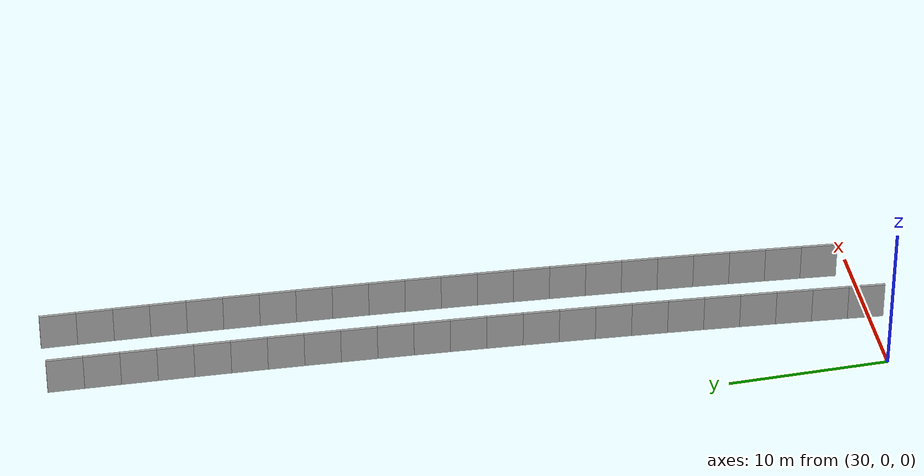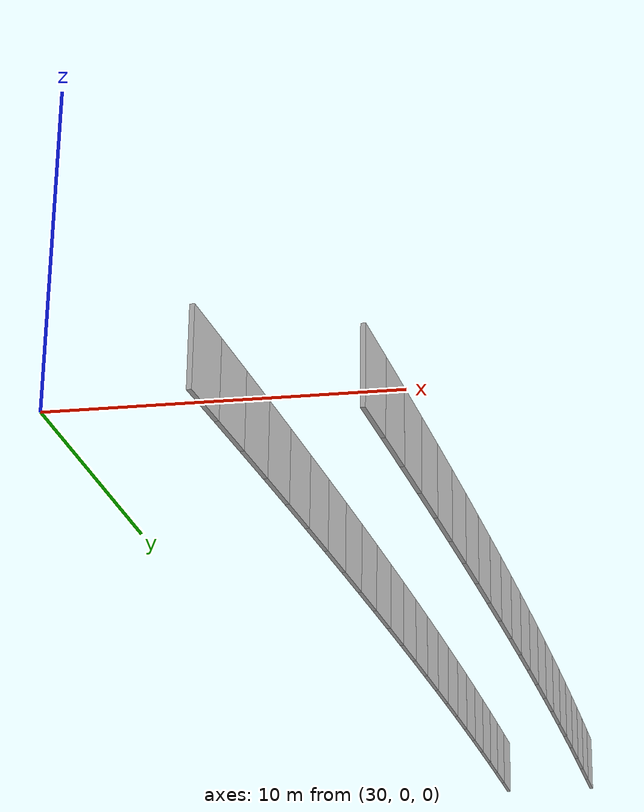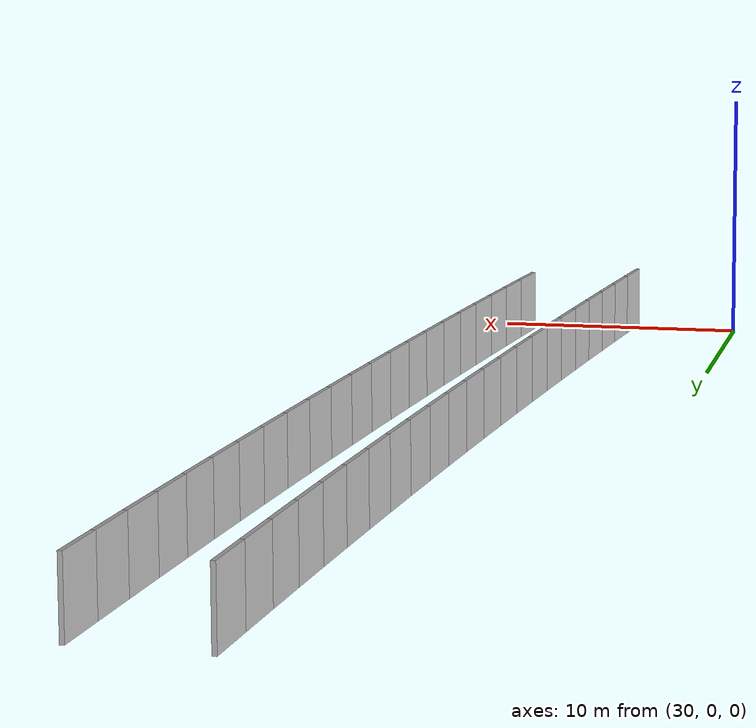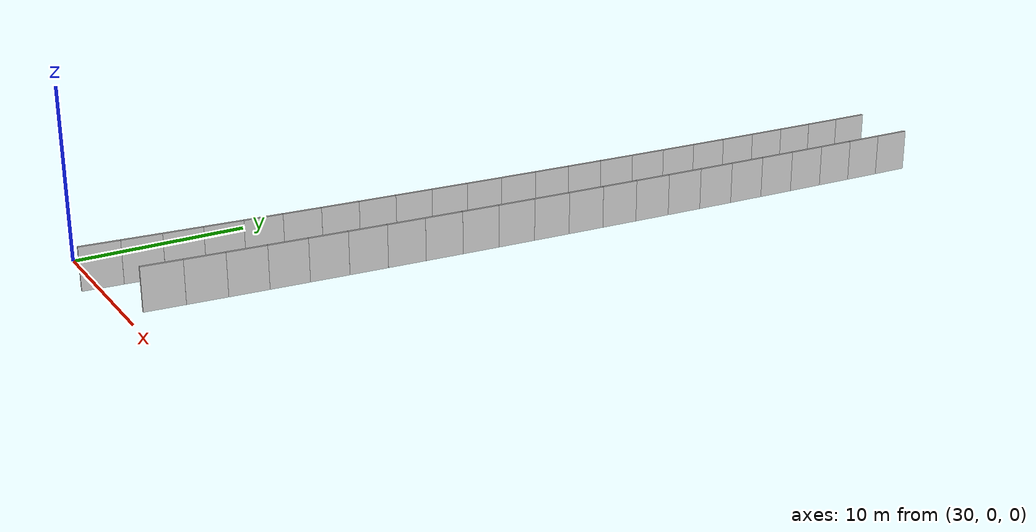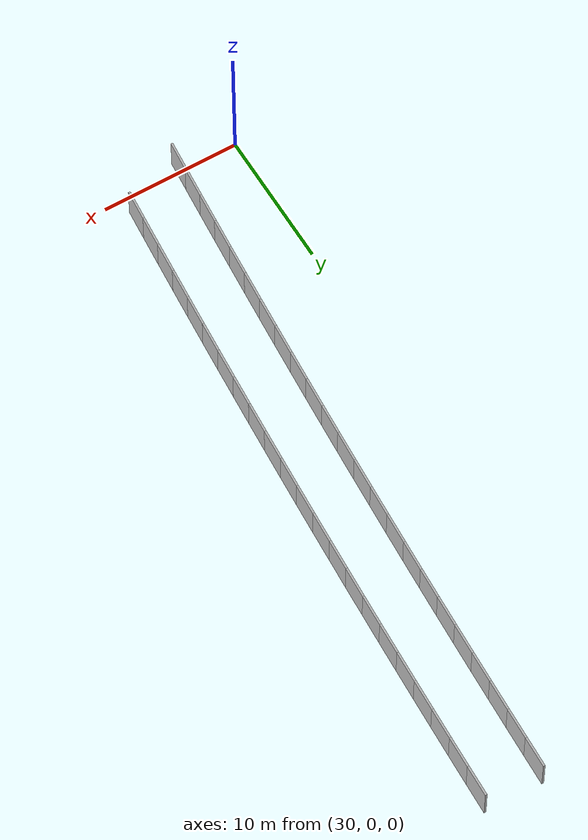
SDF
<?xml version="1.0" ?>
<sdf version="1.6">
  <model name="sps_4623">
    <pose frame="">0 0 0 0 -0 0</pose>
    <static>1</static>
    <self_collide>0</self_collide>
    <allow_auto_disable>0</allow_auto_disable>
    <link name="Wall4510">
      <kinematic>0</kinematic>
      <gravity>1</gravity>
      <self_collide>0</self_collide>
      <collision name="collision">
        <geometry>
          <box>
            <size>2.25455 0.15 2.5</size>
          </box>
        </geometry>
        <pose frame="">0 0 0 0 -0 0</pose>
      </collision>
      <visual name="visual">
        <geometry>
          <box>
            <size>2.25455 0.15 2.5</size>
          </box>
        </geometry>
        <pose frame="">0 0 0 0 -0 0</pose>
        <cast_shadows>1</cast_shadows>
        <transparency>0.0</transparency>
      </visual>
      <pose frame="">38.7667 2.11119 1.25 0 -0 1.48259</pose>
    </link>
    <link name="Wall4511">
      <kinematic>0</kinematic>
      <gravity>1</gravity>
      <self_collide>0</self_collide>
      <collision name="collision">
        <geometry>
          <box>
            <size>2.25467 0.15 2.5</size>
          </box>
        </geometry>
        <pose frame="">0 0 0 0 -0 0</pose>
      </collision>
      <visual name="visual">
        <geometry>
          <box>
            <size>2.25467 0.15 2.5</size>
          </box>
        </geometry>
        <pose frame="">0 0 0 0 -0 0</pose>
        <cast_shadows>1</cast_shadows>
        <transparency>0.0</transparency>
      </visual>
      <pose frame="">38.9625 4.35728 1.25 0 -0 1.48509</pose>
    </link>
    <link name="Wall4512">
      <kinematic>0</kinematic>
      <gravity>1</gravity>
      <self_collide>0</self_collide>
      <collision name="collision">
        <geometry>
          <box>
            <size>2.25466 0.15 2.5</size>
          </box>
        </geometry>
        <pose frame="">0 0 0 0 -0 0</pose>
      </collision>
      <visual name="visual">
        <geometry>
          <box>
            <size>2.25466 0.15 2.5</size>
          </box>
        </geometry>
        <pose frame="">0 0 0 0 -0 0</pose>
        <cast_shadows>1</cast_shadows>
        <transparency>0.0</transparency>
      </visual>
      <pose frame="">39.1529 6.6039 1.25 0 -0 1.4874</pose>
    </link>
    <link name="Wall4513">
      <kinematic>0</kinematic>
      <gravity>1</gravity>
      <self_collide>0</self_collide>
      <collision name="collision">
        <geometry>
          <box>
            <size>2.2546 0.15 2.5</size>
          </box>
        </geometry>
        <pose frame="">0 0 0 0 -0 0</pose>
      </collision>
      <visual name="visual">
        <geometry>
          <box>
            <size>2.2546 0.15 2.5</size>
          </box>
        </geometry>
        <pose frame="">0 0 0 0 -0 0</pose>
        <cast_shadows>1</cast_shadows>
        <transparency>0.0</transparency>
      </visual>
      <pose frame="">39.3382 8.85091 1.25 0 -0 1.48971</pose>
    </link>
    <link name="Wall4514">
      <kinematic>0</kinematic>
      <gravity>1</gravity>
      <self_collide>0</self_collide>
      <collision name="collision">
        <geometry>
          <box>
            <size>2.25459 0.15 2.5</size>
          </box>
        </geometry>
        <pose frame="">0 0 0 0 -0 0</pose>
      </collision>
      <visual name="visual">
        <geometry>
          <box>
            <size>2.25459 0.15 2.5</size>
          </box>
        </geometry>
        <pose frame="">0 0 0 0 -0 0</pose>
        <cast_shadows>1</cast_shadows>
        <transparency>0.0</transparency>
      </visual>
      <pose frame="">39.5181 11.0983 1.25 0 -0 1.49213</pose>
    </link>
    <link name="Wall4515">
      <kinematic>0</kinematic>
      <gravity>1</gravity>
      <self_collide>0</self_collide>
      <collision name="collision">
        <geometry>
          <box>
            <size>2.25471 0.15 2.5</size>
          </box>
        </geometry>
        <pose frame="">0 0 0 0 -0 0</pose>
      </collision>
      <visual name="visual">
        <geometry>
          <box>
            <size>2.25471 0.15 2.5</size>
          </box>
        </geometry>
        <pose frame="">0 0 0 0 -0 0</pose>
        <cast_shadows>1</cast_shadows>
        <transparency>0.0</transparency>
      </visual>
      <pose frame="">39.6925 13.3462 1.25 0 -0 1.4946</pose>
    </link>
    <link name="Wall4516">
      <kinematic>0</kinematic>
      <gravity>1</gravity>
      <self_collide>0</self_collide>
      <collision name="collision">
        <geometry>
          <box>
            <size>2.25457 0.15 2.5</size>
          </box>
        </geometry>
        <pose frame="">0 0 0 0 -0 0</pose>
      </collision>
      <visual name="visual">
        <geometry>
          <box>
            <size>2.25457 0.15 2.5</size>
          </box>
        </geometry>
        <pose frame="">0 0 0 0 -0 0</pose>
        <cast_shadows>1</cast_shadows>
        <transparency>0.0</transparency>
      </visual>
      <pose frame="">39.8616 15.5945 1.25 0 -0 1.49685</pose>
    </link>
    <link name="Wall4517">
      <kinematic>0</kinematic>
      <gravity>1</gravity>
      <self_collide>0</self_collide>
      <collision name="collision">
        <geometry>
          <box>
            <size>2.25473 0.15 2.5</size>
          </box>
        </geometry>
        <pose frame="">0 0 0 0 -0 0</pose>
      </collision>
      <visual name="visual">
        <geometry>
          <box>
            <size>2.25473 0.15 2.5</size>
          </box>
        </geometry>
        <pose frame="">0 0 0 0 -0 0</pose>
        <cast_shadows>1</cast_shadows>
        <transparency>0.0</transparency>
      </visual>
      <pose frame="">40.0254 17.8432 1.25 0 -0 1.49924</pose>
    </link>
    <link name="Wall4518">
      <kinematic>0</kinematic>
      <gravity>1</gravity>
      <self_collide>0</self_collide>
      <collision name="collision">
        <geometry>
          <box>
            <size>2.25442 0.15 2.5</size>
          </box>
        </geometry>
        <pose frame="">0 0 0 0 -0 0</pose>
      </collision>
      <visual name="visual">
        <geometry>
          <box>
            <size>2.25442 0.15 2.5</size>
          </box>
        </geometry>
        <pose frame="">0 0 0 0 -0 0</pose>
        <cast_shadows>1</cast_shadows>
        <transparency>0.0</transparency>
      </visual>
      <pose frame="">40.184 20.0922 1.25 0 -0 1.50162</pose>
    </link>
    <link name="Wall4519">
      <kinematic>0</kinematic>
      <gravity>1</gravity>
      <self_collide>0</self_collide>
      <collision name="collision">
        <geometry>
          <box>
            <size>2.25466 0.15 2.5</size>
          </box>
        </geometry>
        <pose frame="">0 0 0 0 -0 0</pose>
      </collision>
      <visual name="visual">
        <geometry>
          <box>
            <size>2.25466 0.15 2.5</size>
          </box>
        </geometry>
        <pose frame="">0 0 0 0 -0 0</pose>
        <cast_shadows>1</cast_shadows>
        <transparency>0.0</transparency>
      </visual>
      <pose frame="">40.3371 22.3415 1.25 0 -0 1.50404</pose>
    </link>
    <link name="Wall4520">
      <kinematic>0</kinematic>
      <gravity>1</gravity>
      <self_collide>0</self_collide>
      <collision name="collision">
        <geometry>
          <box>
            <size>2.25465 0.15 2.5</size>
          </box>
        </geometry>
        <pose frame="">0 0 0 0 -0 0</pose>
      </collision>
      <visual name="visual">
        <geometry>
          <box>
            <size>2.25465 0.15 2.5</size>
          </box>
        </geometry>
        <pose frame="">0 0 0 0 -0 0</pose>
        <cast_shadows>1</cast_shadows>
        <transparency>0.0</transparency>
      </visual>
      <pose frame="">40.4846 24.5913 1.25 0 -0 1.50654</pose>
    </link>
    <link name="Wall4521">
      <kinematic>0</kinematic>
      <gravity>1</gravity>
      <self_collide>0</self_collide>
      <collision name="collision">
        <geometry>
          <box>
            <size>2.25471 0.15 2.5</size>
          </box>
        </geometry>
        <pose frame="">0 0 0 0 -0 0</pose>
      </collision>
      <visual name="visual">
        <geometry>
          <box>
            <size>2.25471 0.15 2.5</size>
          </box>
        </geometry>
        <pose frame="">0 0 0 0 -0 0</pose>
        <cast_shadows>1</cast_shadows>
        <transparency>0.0</transparency>
      </visual>
      <pose frame="">40.6269 26.8415 1.25 0 -0 1.50874</pose>
    </link>
    <link name="Wall4522">
      <kinematic>0</kinematic>
      <gravity>1</gravity>
      <self_collide>0</self_collide>
      <collision name="collision">
        <geometry>
          <box>
            <size>2.25463 0.15 2.5</size>
          </box>
        </geometry>
        <pose frame="">0 0 0 0 -0 0</pose>
      </collision>
      <visual name="visual">
        <geometry>
          <box>
            <size>2.25463 0.15 2.5</size>
          </box>
        </geometry>
        <pose frame="">0 0 0 0 -0 0</pose>
        <cast_shadows>1</cast_shadows>
        <transparency>0.0</transparency>
      </visual>
      <pose frame="">40.7642 29.092 1.25 0 -0 1.51107</pose>
    </link>
    <link name="Wall4523">
      <kinematic>0</kinematic>
      <gravity>1</gravity>
      <self_collide>0</self_collide>
      <collision name="collision">
        <geometry>
          <box>
            <size>2.25447 0.15 2.5</size>
          </box>
        </geometry>
        <pose frame="">0 0 0 0 -0 0</pose>
      </collision>
      <visual name="visual">
        <geometry>
          <box>
            <size>2.25447 0.15 2.5</size>
          </box>
        </geometry>
        <pose frame="">0 0 0 0 -0 0</pose>
        <cast_shadows>1</cast_shadows>
        <transparency>0.0</transparency>
      </visual>
      <pose frame="">40.8958 31.3427 1.25 0 -0 1.51364</pose>
    </link>
    <link name="Wall4524">
      <kinematic>0</kinematic>
      <gravity>1</gravity>
      <self_collide>0</self_collide>
      <collision name="collision">
        <geometry>
          <box>
            <size>2.25462 0.15 2.5</size>
          </box>
        </geometry>
        <pose frame="">0 0 0 0 -0 0</pose>
      </collision>
      <visual name="visual">
        <geometry>
          <box>
            <size>2.25462 0.15 2.5</size>
          </box>
        </geometry>
        <pose frame="">0 0 0 0 -0 0</pose>
        <cast_shadows>1</cast_shadows>
        <transparency>0.0</transparency>
      </visual>
      <pose frame="">41.0221 33.5937 1.25 0 -0 1.51584</pose>
    </link>
    <link name="Wall4525">
      <kinematic>0</kinematic>
      <gravity>1</gravity>
      <self_collide>0</self_collide>
      <collision name="collision">
        <geometry>
          <box>
            <size>2.25452 0.15 2.5</size>
          </box>
        </geometry>
        <pose frame="">0 0 0 0 -0 0</pose>
      </collision>
      <visual name="visual">
        <geometry>
          <box>
            <size>2.25452 0.15 2.5</size>
          </box>
        </geometry>
        <pose frame="">0 0 0 0 -0 0</pose>
        <cast_shadows>1</cast_shadows>
        <transparency>0.0</transparency>
      </visual>
      <pose frame="">41.1433 35.845 1.25 0 -0 1.51825</pose>
    </link>
    <link name="Wall4526">
      <kinematic>0</kinematic>
      <gravity>1</gravity>
      <self_collide>0</self_collide>
      <collision name="collision">
        <geometry>
          <box>
            <size>2.25459 0.15 2.5</size>
          </box>
        </geometry>
        <pose frame="">0 0 0 0 -0 0</pose>
      </collision>
      <visual name="visual">
        <geometry>
          <box>
            <size>2.25459 0.15 2.5</size>
          </box>
        </geometry>
        <pose frame="">0 0 0 0 -0 0</pose>
        <cast_shadows>1</cast_shadows>
        <transparency>0.0</transparency>
      </visual>
      <pose frame="">41.2589 38.0966 1.25 0 -0 1.52075</pose>
    </link>
    <link name="Wall4527">
      <kinematic>0</kinematic>
      <gravity>1</gravity>
      <self_collide>0</self_collide>
      <collision name="collision">
        <geometry>
          <box>
            <size>2.25477 0.15 2.5</size>
          </box>
        </geometry>
        <pose frame="">0 0 0 0 -0 0</pose>
      </collision>
      <visual name="visual">
        <geometry>
          <box>
            <size>2.25477 0.15 2.5</size>
          </box>
        </geometry>
        <pose frame="">0 0 0 0 -0 0</pose>
        <cast_shadows>1</cast_shadows>
        <transparency>0.0</transparency>
      </visual>
      <pose frame="">41.3691 40.3486 1.25 0 -0 1.52305</pose>
    </link>
    <link name="Wall4528">
      <kinematic>0</kinematic>
      <gravity>1</gravity>
      <self_collide>0</self_collide>
      <collision name="collision">
        <geometry>
          <box>
            <size>2.2547 0.15 2.5</size>
          </box>
        </geometry>
        <pose frame="">0 0 0 0 -0 0</pose>
      </collision>
      <visual name="visual">
        <geometry>
          <box>
            <size>2.2547 0.15 2.5</size>
          </box>
        </geometry>
        <pose frame="">0 0 0 0 -0 0</pose>
        <cast_shadows>1</cast_shadows>
        <transparency>0.0</transparency>
      </visual>
      <pose frame="">41.4741 42.6009 1.25 0 -0 1.52538</pose>
    </link>
    <link name="Wall4529">
      <kinematic>0</kinematic>
      <gravity>1</gravity>
      <self_collide>0</self_collide>
      <collision name="collision">
        <geometry>
          <box>
            <size>2.25453 0.15 2.5</size>
          </box>
        </geometry>
        <pose frame="">0 0 0 0 -0 0</pose>
      </collision>
      <visual name="visual">
        <geometry>
          <box>
            <size>2.25453 0.15 2.5</size>
          </box>
        </geometry>
        <pose frame="">0 0 0 0 -0 0</pose>
        <cast_shadows>1</cast_shadows>
        <transparency>0.0</transparency>
      </visual>
      <pose frame="">41.5738 44.8533 1.25 0 -0 1.52774</pose>
    </link>
    <link name="Wall4530">
      <kinematic>0</kinematic>
      <gravity>1</gravity>
      <self_collide>0</self_collide>
      <collision name="collision">
        <geometry>
          <box>
            <size>2.25466 0.15 2.5</size>
          </box>
        </geometry>
        <pose frame="">0 0 0 0 -0 0</pose>
      </collision>
      <visual name="visual">
        <geometry>
          <box>
            <size>2.25466 0.15 2.5</size>
          </box>
        </geometry>
        <pose frame="">0 0 0 0 -0 0</pose>
        <cast_shadows>1</cast_shadows>
        <transparency>0.0</transparency>
      </visual>
      <pose frame="">41.668 47.1059 1.25 0 -0 1.53026</pose>
    </link>
    <link name="Wall4531">
      <kinematic>0</kinematic>
      <gravity>1</gravity>
      <self_collide>0</self_collide>
      <collision name="collision">
        <geometry>
          <box>
            <size>2.25446 0.15 2.5</size>
          </box>
        </geometry>
        <pose frame="">0 0 0 0 -0 0</pose>
      </collision>
      <visual name="visual">
        <geometry>
          <box>
            <size>2.25446 0.15 2.5</size>
          </box>
        </geometry>
        <pose frame="">0 0 0 0 -0 0</pose>
        <cast_shadows>1</cast_shadows>
        <transparency>0.0</transparency>
      </visual>
      <pose frame="">41.7569 49.3587 1.25 0 -0 1.53245</pose>
    </link>
    <link name="Wall6234">
      <kinematic>0</kinematic>
      <gravity>1</gravity>
      <self_collide>0</self_collide>
      <collision name="collision">
        <geometry>
          <box>
            <size>2.24479 0.15 2.5</size>
          </box>
        </geometry>
        <pose frame="">0 0 0 0 -0 0</pose>
      </collision>
      <visual name="visual">
        <geometry>
          <box>
            <size>2.24479 0.15 2.5</size>
          </box>
        </geometry>
        <pose frame="">0 0 0 0 -0 0</pose>
        <cast_shadows>1</cast_shadows>
        <transparency>0.0</transparency>
      </visual>
      <pose frame="">34.4431 0.239882 1.25 0 -0 1.48024</pose>
    </link>
    <link name="Wall6235">
      <kinematic>0</kinematic>
      <gravity>1</gravity>
      <self_collide>0</self_collide>
      <collision name="collision">
        <geometry>
          <box>
            <size>2.24474 0.15 2.5</size>
          </box>
        </geometry>
        <pose frame="">0 0 0 0 -0 0</pose>
      </collision>
      <visual name="visual">
        <geometry>
          <box>
            <size>2.24474 0.15 2.5</size>
          </box>
        </geometry>
        <pose frame="">0 0 0 0 -0 0</pose>
        <cast_shadows>1</cast_shadows>
        <transparency>0.0</transparency>
      </visual>
      <pose frame="">34.6435 2.47569 1.25 0 -0 1.48264</pose>
    </link>
    <link name="Wall6236">
      <kinematic>0</kinematic>
      <gravity>1</gravity>
      <self_collide>0</self_collide>
      <collision name="collision">
        <geometry>
          <box>
            <size>2.24463 0.15 2.5</size>
          </box>
        </geometry>
        <pose frame="">0 0 0 0 -0 0</pose>
      </collision>
      <visual name="visual">
        <geometry>
          <box>
            <size>2.24463 0.15 2.5</size>
          </box>
        </geometry>
        <pose frame="">0 0 0 0 -0 0</pose>
        <cast_shadows>1</cast_shadows>
        <transparency>0.0</transparency>
      </visual>
      <pose frame="">34.8384 4.7119 1.25 0 -0 1.48507</pose>
    </link>
    <link name="Wall6237">
      <kinematic>0</kinematic>
      <gravity>1</gravity>
      <self_collide>0</self_collide>
      <collision name="collision">
        <geometry>
          <box>
            <size>2.24482 0.15 2.5</size>
          </box>
        </geometry>
        <pose frame="">0 0 0 0 -0 0</pose>
      </collision>
      <visual name="visual">
        <geometry>
          <box>
            <size>2.24482 0.15 2.5</size>
          </box>
        </geometry>
        <pose frame="">0 0 0 0 -0 0</pose>
        <cast_shadows>1</cast_shadows>
        <transparency>0.0</transparency>
      </visual>
      <pose frame="">35.0281 6.94859 1.25 0 -0 1.48731</pose>
    </link>
    <link name="Wall6238">
      <kinematic>0</kinematic>
      <gravity>1</gravity>
      <self_collide>0</self_collide>
      <collision name="collision">
        <geometry>
          <box>
            <size>2.24497 0.15 2.5</size>
          </box>
        </geometry>
        <pose frame="">0 0 0 0 -0 0</pose>
      </collision>
      <visual name="visual">
        <geometry>
          <box>
            <size>2.24497 0.15 2.5</size>
          </box>
        </geometry>
        <pose frame="">0 0 0 0 -0 0</pose>
        <cast_shadows>1</cast_shadows>
        <transparency>0.0</transparency>
      </visual>
      <pose frame="">35.2125 9.1859 1.25 0 -0 1.48982</pose>
    </link>
    <link name="Wall6239">
      <kinematic>0</kinematic>
      <gravity>1</gravity>
      <self_collide>0</self_collide>
      <collision name="collision">
        <geometry>
          <box>
            <size>2.24455 0.15 2.5</size>
          </box>
        </geometry>
        <pose frame="">0 0 0 0 -0 0</pose>
      </collision>
      <visual name="visual">
        <geometry>
          <box>
            <size>2.24455 0.15 2.5</size>
          </box>
        </geometry>
        <pose frame="">0 0 0 0 -0 0</pose>
        <cast_shadows>1</cast_shadows>
        <transparency>0.0</transparency>
      </visual>
      <pose frame="">35.3914 11.4235 1.25 0 -0 1.49213</pose>
    </link>
    <link name="Wall6240">
      <kinematic>0</kinematic>
      <gravity>1</gravity>
      <self_collide>0</self_collide>
      <collision name="collision">
        <geometry>
          <box>
            <size>2.24493 0.15 2.5</size>
          </box>
        </geometry>
        <pose frame="">0 0 0 0 -0 0</pose>
      </collision>
      <visual name="visual">
        <geometry>
          <box>
            <size>2.24493 0.15 2.5</size>
          </box>
        </geometry>
        <pose frame="">0 0 0 0 -0 0</pose>
        <cast_shadows>1</cast_shadows>
        <transparency>0.0</transparency>
      </visual>
      <pose frame="">35.5651 13.6615 1.25 0 -0 1.49454</pose>
    </link>
    <link name="Wall6241">
      <kinematic>0</kinematic>
      <gravity>1</gravity>
      <self_collide>0</self_collide>
      <collision name="collision">
        <geometry>
          <box>
            <size>2.24472 0.15 2.5</size>
          </box>
        </geometry>
        <pose frame="">0 0 0 0 -0 0</pose>
      </collision>
      <visual name="visual">
        <geometry>
          <box>
            <size>2.24472 0.15 2.5</size>
          </box>
        </geometry>
        <pose frame="">0 0 0 0 -0 0</pose>
        <cast_shadows>1</cast_shadows>
        <transparency>0.0</transparency>
      </visual>
      <pose frame="">35.7335 15.9 1.25 0 -0 1.49688</pose>
    </link>
    <link name="Wall6242">
      <kinematic>0</kinematic>
      <gravity>1</gravity>
      <self_collide>0</self_collide>
      <collision name="collision">
        <geometry>
          <box>
            <size>2.24475 0.15 2.5</size>
          </box>
        </geometry>
        <pose frame="">0 0 0 0 -0 0</pose>
      </collision>
      <visual name="visual">
        <geometry>
          <box>
            <size>2.24475 0.15 2.5</size>
          </box>
        </geometry>
        <pose frame="">0 0 0 0 -0 0</pose>
        <cast_shadows>1</cast_shadows>
        <transparency>0.0</transparency>
      </visual>
      <pose frame="">35.8966 18.1388 1.25 0 -0 1.49928</pose>
    </link>
    <link name="Wall6243">
      <kinematic>0</kinematic>
      <gravity>1</gravity>
      <self_collide>0</self_collide>
      <collision name="collision">
        <geometry>
          <box>
            <size>2.24474 0.15 2.5</size>
          </box>
        </geometry>
        <pose frame="">0 0 0 0 -0 0</pose>
      </collision>
      <visual name="visual">
        <geometry>
          <box>
            <size>2.24474 0.15 2.5</size>
          </box>
        </geometry>
        <pose frame="">0 0 0 0 -0 0</pose>
        <cast_shadows>1</cast_shadows>
        <transparency>0.0</transparency>
      </visual>
      <pose frame="">36.0543 20.378 1.25 0 -0 1.50168</pose>
    </link>
    <link name="Wall6244">
      <kinematic>0</kinematic>
      <gravity>1</gravity>
      <self_collide>0</self_collide>
      <collision name="collision">
        <geometry>
          <box>
            <size>2.24483 0.15 2.5</size>
          </box>
        </geometry>
        <pose frame="">0 0 0 0 -0 0</pose>
      </collision>
      <visual name="visual">
        <geometry>
          <box>
            <size>2.24483 0.15 2.5</size>
          </box>
        </geometry>
        <pose frame="">0 0 0 0 -0 0</pose>
        <cast_shadows>1</cast_shadows>
        <transparency>0.0</transparency>
      </visual>
      <pose frame="">36.2069 22.6176 1.25 0 -0 1.50392</pose>
    </link>
    <link name="Wall6245">
      <kinematic>0</kinematic>
      <gravity>1</gravity>
      <self_collide>0</self_collide>
      <collision name="collision">
        <geometry>
          <box>
            <size>2.24506 0.15 2.5</size>
          </box>
        </geometry>
        <pose frame="">0 0 0 0 -0 0</pose>
      </collision>
      <visual name="visual">
        <geometry>
          <box>
            <size>2.24506 0.15 2.5</size>
          </box>
        </geometry>
        <pose frame="">0 0 0 0 -0 0</pose>
        <cast_shadows>1</cast_shadows>
        <transparency>0.0</transparency>
      </visual>
      <pose frame="">36.3541 24.8577 1.25 0 -0 1.50646</pose>
    </link>
    <link name="Wall6246">
      <kinematic>0</kinematic>
      <gravity>1</gravity>
      <self_collide>0</self_collide>
      <collision name="collision">
        <geometry>
          <box>
            <size>2.24448 0.15 2.5</size>
          </box>
        </geometry>
        <pose frame="">0 0 0 0 -0 0</pose>
      </collision>
      <visual name="visual">
        <geometry>
          <box>
            <size>2.24448 0.15 2.5</size>
          </box>
        </geometry>
        <pose frame="">0 0 0 0 -0 0</pose>
        <cast_shadows>1</cast_shadows>
        <transparency>0.0</transparency>
      </visual>
      <pose frame="">36.4957 27.098 1.25 0 -0 1.50881</pose>
    </link>
    <link name="Wall6247">
      <kinematic>0</kinematic>
      <gravity>1</gravity>
      <self_collide>0</self_collide>
      <collision name="collision">
        <geometry>
          <box>
            <size>2.24479 0.15 2.5</size>
          </box>
        </geometry>
        <pose frame="">0 0 0 0 -0 0</pose>
      </collision>
      <visual name="visual">
        <geometry>
          <box>
            <size>2.24479 0.15 2.5</size>
          </box>
        </geometry>
        <pose frame="">0 0 0 0 -0 0</pose>
        <cast_shadows>1</cast_shadows>
        <transparency>0.0</transparency>
      </visual>
      <pose frame="">36.6323 29.3385 1.25 0 -0 1.51108</pose>
    </link>
    <link name="Wall6248">
      <kinematic>0</kinematic>
      <gravity>1</gravity>
      <self_collide>0</self_collide>
      <collision name="collision">
        <geometry>
          <box>
            <size>2.24489 0.15 2.5</size>
          </box>
        </geometry>
        <pose frame="">0 0 0 0 -0 0</pose>
      </collision>
      <visual name="visual">
        <geometry>
          <box>
            <size>2.24489 0.15 2.5</size>
          </box>
        </geometry>
        <pose frame="">0 0 0 0 -0 0</pose>
        <cast_shadows>1</cast_shadows>
        <transparency>0.0</transparency>
      </visual>
      <pose frame="">36.7634 31.5795 1.25 0 -0 1.51356</pose>
    </link>
    <link name="Wall6249">
      <kinematic>0</kinematic>
      <gravity>1</gravity>
      <self_collide>0</self_collide>
      <collision name="collision">
        <geometry>
          <box>
            <size>2.24458 0.15 2.5</size>
          </box>
        </geometry>
        <pose frame="">0 0 0 0 -0 0</pose>
      </collision>
      <visual name="visual">
        <geometry>
          <box>
            <size>2.24458 0.15 2.5</size>
          </box>
        </geometry>
        <pose frame="">0 0 0 0 -0 0</pose>
        <cast_shadows>1</cast_shadows>
        <transparency>0.0</transparency>
      </visual>
      <pose frame="">36.8892 33.8207 1.25 0 -0 1.51598</pose>
    </link>
    <link name="Wall6250">
      <kinematic>0</kinematic>
      <gravity>1</gravity>
      <self_collide>0</self_collide>
      <collision name="collision">
        <geometry>
          <box>
            <size>2.24491 0.15 2.5</size>
          </box>
        </geometry>
        <pose frame="">0 0 0 0 -0 0</pose>
      </collision>
      <visual name="visual">
        <geometry>
          <box>
            <size>2.24491 0.15 2.5</size>
          </box>
        </geometry>
        <pose frame="">0 0 0 0 -0 0</pose>
        <cast_shadows>1</cast_shadows>
        <transparency>0.0</transparency>
      </visual>
      <pose frame="">37.0095 36.0622 1.25 0 -0 1.5183</pose>
    </link>
    <link name="Wall6251">
      <kinematic>0</kinematic>
      <gravity>1</gravity>
      <self_collide>0</self_collide>
      <collision name="collision">
        <geometry>
          <box>
            <size>2.24458 0.15 2.5</size>
          </box>
        </geometry>
        <pose frame="">0 0 0 0 -0 0</pose>
      </collision>
      <visual name="visual">
        <geometry>
          <box>
            <size>2.24458 0.15 2.5</size>
          </box>
        </geometry>
        <pose frame="">0 0 0 0 -0 0</pose>
        <cast_shadows>1</cast_shadows>
        <transparency>0.0</transparency>
      </visual>
      <pose frame="">37.1247 38.304 1.25 0 -0 1.52069</pose>
    </link>
    <link name="Wall6252">
      <kinematic>0</kinematic>
      <gravity>1</gravity>
      <self_collide>0</self_collide>
      <collision name="collision">
        <geometry>
          <box>
            <size>2.245 0.15 2.5</size>
          </box>
        </geometry>
        <pose frame="">0 0 0 0 -0 0</pose>
      </collision>
      <visual name="visual">
        <geometry>
          <box>
            <size>2.245 0.15 2.5</size>
          </box>
        </geometry>
        <pose frame="">0 0 0 0 -0 0</pose>
        <cast_shadows>1</cast_shadows>
        <transparency>0.0</transparency>
      </visual>
      <pose frame="">37.2345 40.5461 1.25 0 -0 1.52296</pose>
    </link>
    <link name="Wall6253">
      <kinematic>0</kinematic>
      <gravity>1</gravity>
      <self_collide>0</self_collide>
      <collision name="collision">
        <geometry>
          <box>
            <size>2.24486 0.15 2.5</size>
          </box>
        </geometry>
        <pose frame="">0 0 0 0 -0 0</pose>
      </collision>
      <visual name="visual">
        <geometry>
          <box>
            <size>2.24486 0.15 2.5</size>
          </box>
        </geometry>
        <pose frame="">0 0 0 0 -0 0</pose>
        <cast_shadows>1</cast_shadows>
        <transparency>0.0</transparency>
      </visual>
      <pose frame="">37.3391 42.7886 1.25 0 -0 1.52543</pose>
    </link>
    <link name="Wall6254">
      <kinematic>0</kinematic>
      <gravity>1</gravity>
      <self_collide>0</self_collide>
      <collision name="collision">
        <geometry>
          <box>
            <size>2.24469 0.15 2.5</size>
          </box>
        </geometry>
        <pose frame="">0 0 0 0 -0 0</pose>
      </collision>
      <visual name="visual">
        <geometry>
          <box>
            <size>2.24469 0.15 2.5</size>
          </box>
        </geometry>
        <pose frame="">0 0 0 0 -0 0</pose>
        <cast_shadows>1</cast_shadows>
        <transparency>0.0</transparency>
      </visual>
      <pose frame="">37.4383 45.0312 1.25 0 -0 1.52782</pose>
    </link>
    <link name="Wall6255">
      <kinematic>0</kinematic>
      <gravity>1</gravity>
      <self_collide>0</self_collide>
      <collision name="collision">
        <geometry>
          <box>
            <size>2.24464 0.15 2.5</size>
          </box>
        </geometry>
        <pose frame="">0 0 0 0 -0 0</pose>
      </collision>
      <visual name="visual">
        <geometry>
          <box>
            <size>2.24464 0.15 2.5</size>
          </box>
        </geometry>
        <pose frame="">0 0 0 0 -0 0</pose>
        <cast_shadows>1</cast_shadows>
        <transparency>0.0</transparency>
      </visual>
      <pose frame="">37.532 47.2739 1.25 0 -0 1.53024</pose>
    </link>
    <link name="Wall6256">
      <kinematic>0</kinematic>
      <gravity>1</gravity>
      <self_collide>0</self_collide>
      <collision name="collision">
        <geometry>
          <box>
            <size>2.24487 0.15 2.5</size>
          </box>
        </geometry>
        <pose frame="">0 0 0 0 -0 0</pose>
      </collision>
      <visual name="visual">
        <geometry>
          <box>
            <size>2.24487 0.15 2.5</size>
          </box>
        </geometry>
        <pose frame="">0 0 0 0 -0 0</pose>
        <cast_shadows>1</cast_shadows>
        <transparency>0.0</transparency>
      </visual>
      <pose frame="">37.6205 49.5169 1.25 0 -0 1.53248</pose>
    </link>
  </model>
</sdf>
